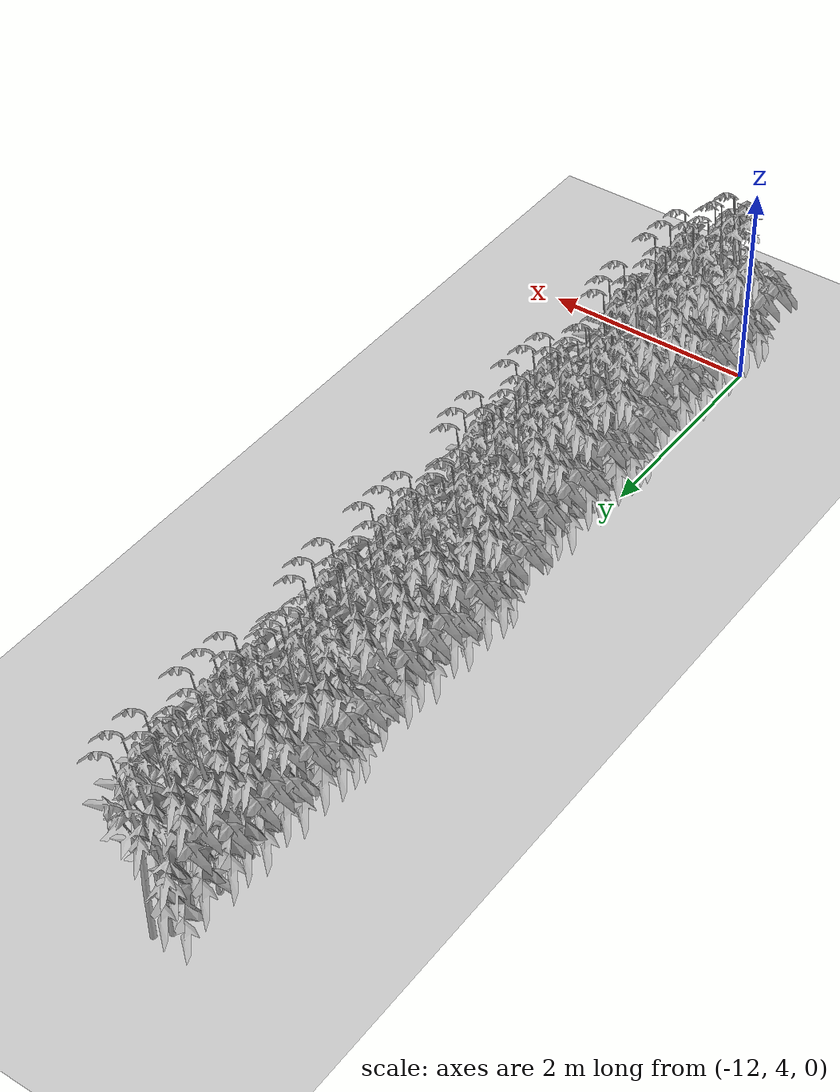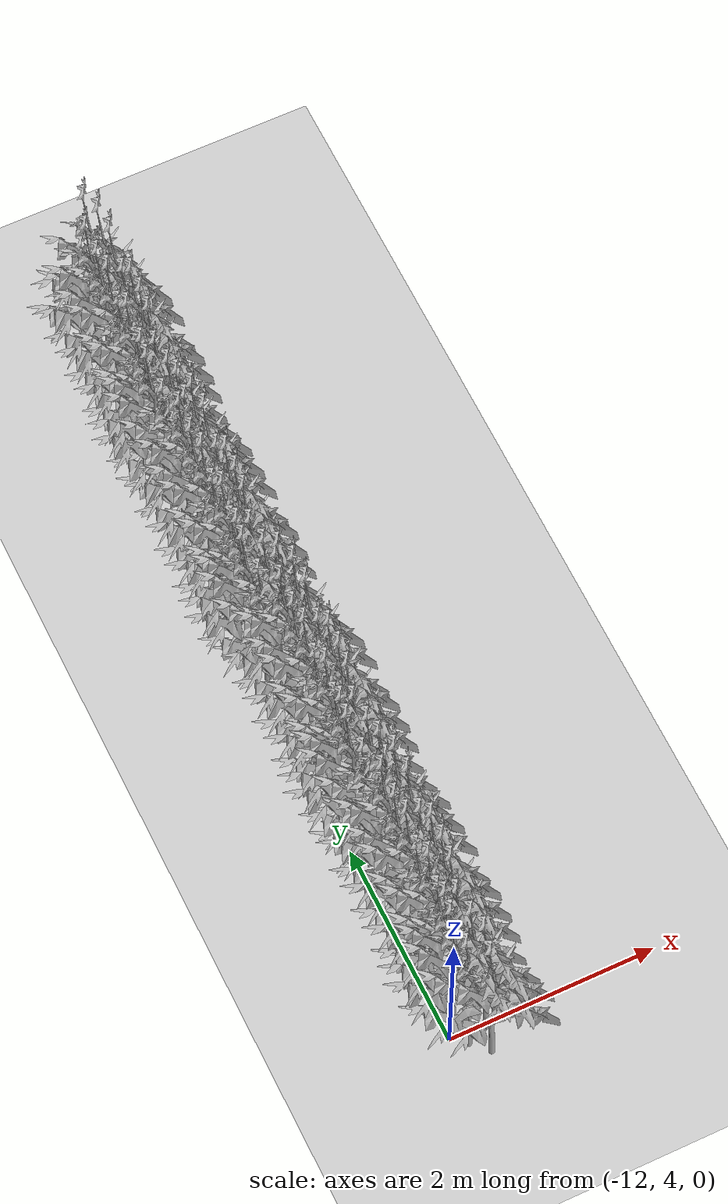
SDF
<sdf version="1.6">
 <world name="default">
  <model name="ground_plane">
   <static>1</static>
   <link name="link">
    <collision name="collision">
     <geometry><plane><normal>0 0 1</normal><size>100 100</size></plane></geometry>
     <surface>
      <contact><collide_bitmask>65535</collide_bitmask></contact>
      <friction><ode><mu>100</mu><mu2>50</mu2></ode></friction>
     </surface>
    </collision>
    <visual name="visual">
     <cast_shadows>0</cast_shadows>
     <geometry><plane><normal>0 0 1</normal><size>100 100</size></plane></geometry>
     <material>
      <script><uri>file://media/materials/scripts/gazebo.material</uri><name>Gazebo/Grey</name></script>
     </material>
    </visual>
   </link>
  </model>
  <model name="MIddle_Plant_3_12">
   <model name="MIddle_Plant_1">
    <model name="tomato_plant_big">
     <static>1</static>
     <link name="link">
      <collision name="collision">
       <pose>0 0 0 1.5708 -0 0</pose>
       <geometry><mesh><scale>0.5 0.6 0.5</scale><uri>model://stick/meshes/stick.dae</uri></mesh></geometry>
      </collision>
      <visual name="visual">
       <geometry>
        <mesh><scale>5e-06 5e-06 7e-06</scale><uri>model://tomato_plant_big/meshes/tomato-plant.dae</uri></mesh>
       </geometry>
      </visual>
     </link>
     <pose>-0.144318 -0.693607 -0 0 -0 0</pose>
    </model>
    <model name="tomato_plant_big_0">
     <static>1</static>
     <link name="link">
      <collision name="collision">
       <pose>0 0 0 1.5708 -0 0</pose>
       <geometry><mesh><scale>0.5 0.6 0.5</scale><uri>model://stick/meshes/stick.dae</uri></mesh></geometry>
      </collision>
      <visual name="visual">
       <geometry>
        <mesh><scale>5e-06 5e-06 7e-06</scale><uri>model://tomato_plant_big/meshes/tomato-plant.dae</uri></mesh>
       </geometry>
      </visual>
     </link>
     <pose>-0.11784 -0.519827 0 0 -0 0</pose>
    </model>
    <model name="tomato_plant_big_1">
     <static>1</static>
     <link name="link">
      <collision name="collision">
       <pose>0 0 0 1.5708 -0 0</pose>
       <geometry><mesh><scale>0.5 0.6 0.5</scale><uri>model://stick/meshes/stick.dae</uri></mesh></geometry>
      </collision>
      <visual name="visual">
       <geometry>
        <mesh><scale>5e-06 5e-06 7e-06</scale><uri>model://tomato_plant_big/meshes/tomato-plant.dae</uri></mesh>
       </geometry>
      </visual>
     </link>
     <pose>0.073755 -0.247584 0 0 -0 0</pose>
    </model>
    <model name="tomato_plant_big_10">
     <static>1</static>
     <link name="link">
      <collision name="collision">
       <pose>0 0 0 1.5708 -0 0</pose>
       <geometry><mesh><scale>0.5 0.6 0.5</scale><uri>model://stick/meshes/stick.dae</uri></mesh></geometry>
      </collision>
      <visual name="visual">
       <geometry>
        <mesh><scale>5e-06 5e-06 7e-06</scale><uri>model://tomato_plant_big/meshes/tomato-plant.dae</uri></mesh>
       </geometry>
      </visual>
     </link>
     <pose>0.037052 1.07094 0 0 -0 0</pose>
    </model>
    <model name="tomato_plant_big_2">
     <static>1</static>
     <link name="link">
      <collision name="collision">
       <pose>0 0 0 1.5708 -0 0</pose>
       <geometry><mesh><scale>0.5 0.6 0.5</scale><uri>model://stick/meshes/stick.dae</uri></mesh></geometry>
      </collision>
      <visual name="visual">
       <geometry>
        <mesh><scale>5e-06 5e-06 7e-06</scale><uri>model://tomato_plant_big/meshes/tomato-plant.dae</uri></mesh>
       </geometry>
      </visual>
     </link>
     <pose>-0.076926 -0.131165 0 0 -0 0</pose>
    </model>
    <model name="tomato_plant_big_3">
     <static>1</static>
     <link name="link">
      <collision name="collision">
       <pose>0 0 0 1.5708 -0 0</pose>
       <geometry><mesh><scale>0.5 0.6 0.5</scale><uri>model://stick/meshes/stick.dae</uri></mesh></geometry>
      </collision>
      <visual name="visual">
       <geometry>
        <mesh><scale>5e-06 5e-06 7e-06</scale><uri>model://tomato_plant_big/meshes/tomato-plant.dae</uri></mesh>
       </geometry>
      </visual>
     </link>
     <pose>0.093714 -0.038386 0 0 -0 0</pose>
    </model>
    <model name="tomato_plant_big_4">
     <static>1</static>
     <link name="link">
      <collision name="collision">
       <pose>0 0 0 1.5708 -0 0</pose>
       <geometry><mesh><scale>0.5 0.6 0.5</scale><uri>model://stick/meshes/stick.dae</uri></mesh></geometry>
      </collision>
      <visual name="visual">
       <geometry>
        <mesh><scale>5e-06 5e-06 7e-06</scale><uri>model://tomato_plant_big/meshes/tomato-plant.dae</uri></mesh>
       </geometry>
      </visual>
     </link>
     <pose>0.103117 0.184356 0 0 -0 0</pose>
    </model>
    <model name="tomato_plant_big_5">
     <static>1</static>
     <link name="link">
      <collision name="collision">
       <pose>0 0 0 1.5708 -0 0</pose>
       <geometry><mesh><scale>0.5 0.6 0.5</scale><uri>model://stick/meshes/stick.dae</uri></mesh></geometry>
      </collision>
      <visual name="visual">
       <geometry>
        <mesh><scale>5e-06 5e-06 7e-06</scale><uri>model://tomato_plant_big/meshes/tomato-plant.dae</uri></mesh>
       </geometry>
      </visual>
     </link>
     <pose>-0.074883 0.301479 0 0 -0 0</pose>
    </model>
    <model name="tomato_plant_big_6">
     <static>1</static>
     <link name="link">
      <collision name="collision">
       <pose>0 0 0 1.5708 -0 0</pose>
       <geometry><mesh><scale>0.5 0.6 0.5</scale><uri>model://stick/meshes/stick.dae</uri></mesh></geometry>
      </collision>
      <visual name="visual">
       <geometry>
        <mesh><scale>5e-06 5e-06 7e-06</scale><uri>model://tomato_plant_big/meshes/tomato-plant.dae</uri></mesh>
       </geometry>
      </visual>
     </link>
     <pose>-0.096921 0.484007 0 0 -0 0</pose>
    </model>
    <model name="tomato_plant_big_7">
     <static>1</static>
     <link name="link">
      <collision name="collision">
       <pose>0 0 0 1.5708 -0 0</pose>
       <geometry><mesh><scale>0.5 0.6 0.5</scale><uri>model://stick/meshes/stick.dae</uri></mesh></geometry>
      </collision>
      <visual name="visual">
       <geometry>
        <mesh><scale>5e-06 5e-06 7e-06</scale><uri>model://tomato_plant_big/meshes/tomato-plant.dae</uri></mesh>
       </geometry>
      </visual>
     </link>
     <pose>0.107491 0.653976 0 0 -0 0</pose>
    </model>
    <model name="tomato_plant_big_8">
     <static>1</static>
     <link name="link">
      <collision name="collision">
       <pose>0 0 0 1.5708 -0 0</pose>
       <geometry><mesh><scale>0.5 0.6 0.5</scale><uri>model://stick/meshes/stick.dae</uri></mesh></geometry>
      </collision>
      <visual name="visual">
       <geometry>
        <mesh><scale>5e-06 5e-06 7e-06</scale><uri>model://tomato_plant_big/meshes/tomato-plant.dae</uri></mesh>
       </geometry>
      </visual>
     </link>
     <pose>-0.07985 0.768549 0 0 -0 0</pose>
    </model>
    <model name="tomato_plant_big_9">
     <static>1</static>
     <link name="link">
      <collision name="collision">
       <pose>0 0 0 1.5708 -0 0</pose>
       <geometry><mesh><scale>0.5 0.6 0.5</scale><uri>model://stick/meshes/stick.dae</uri></mesh></geometry>
      </collision>
      <visual name="visual">
       <geometry>
        <mesh><scale>5e-06 5e-06 7e-06</scale><uri>model://tomato_plant_big/meshes/tomato-plant.dae</uri></mesh>
       </geometry>
      </visual>
     </link>
     <pose>0.098361 0.890852 0 0 -0 0</pose>
    </model>
    <model name="tomato_plant_medium">
     <static>1</static>
     <link name="link">
      <collision name="collision">
       <pose>0 0 0 1.5708 -0 0</pose>
       <geometry><mesh><scale>0.5 0.5 0.5</scale><uri>model://stick/meshes/stick.dae</uri></mesh></geometry>
      </collision>
      <visual name="visual">
       <geometry>
        <mesh><scale>5e-06 5e-06 6e-06</scale><uri>model://tomato_plant_medium/meshes/tomato-plant.dae</uri></mesh>
       </geometry>
      </visual>
     </link>
     <pose>0.056913 -1.05328 0 0 -0 0</pose>
    </model>
    <model name="tomato_plant_medium_0">
     <static>1</static>
     <link name="link">
      <collision name="collision">
       <pose>0 0 0 1.5708 -0 0</pose>
       <geometry><mesh><scale>0.5 0.5 0.5</scale><uri>model://stick/meshes/stick.dae</uri></mesh></geometry>
      </collision>
      <visual name="visual">
       <geometry>
        <mesh><scale>5e-06 5e-06 6e-06</scale><uri>model://tomato_plant_medium/meshes/tomato-plant.dae</uri></mesh>
       </geometry>
      </visual>
     </link>
     <pose>-0.092719 -0.905729 0 0 -0 0</pose>
    </model>
    <model name="tomato_plant_medium_1">
     <static>1</static>
     <link name="link">
      <collision name="collision">
       <pose>0 0 0 1.5708 -0 0</pose>
       <geometry><mesh><scale>0.5 0.5 0.5</scale><uri>model://stick/meshes/stick.dae</uri></mesh></geometry>
      </collision>
      <visual name="visual">
       <geometry>
        <mesh><scale>5e-06 5e-06 6e-06</scale><uri>model://tomato_plant_medium/meshes/tomato-plant.dae</uri></mesh>
       </geometry>
      </visual>
     </link>
     <pose>0.108962 -0.829637 0 0 -0 0</pose>
    </model>
    <model name="tomato_plant_medium_2">
     <static>1</static>
     <link name="link">
      <collision name="collision">
       <pose>0 0 0 1.5708 -0 0</pose>
       <geometry><mesh><scale>0.5 0.5 0.5</scale><uri>model://stick/meshes/stick.dae</uri></mesh></geometry>
      </collision>
      <visual name="visual">
       <geometry>
        <mesh><scale>5e-06 5e-06 6e-06</scale><uri>model://tomato_plant_medium/meshes/tomato-plant.dae</uri></mesh>
       </geometry>
      </visual>
     </link>
     <pose>0.071216 -0.652507 0 0 -0 0</pose>
    </model>
    <model name="tomato_plant_medium_3">
     <static>1</static>
     <link name="link">
      <collision name="collision">
       <pose>0 0 0 1.5708 -0 0</pose>
       <geometry><mesh><scale>0.5 0.5 0.5</scale><uri>model://stick/meshes/stick.dae</uri></mesh></geometry>
      </collision>
      <visual name="visual">
       <geometry>
        <mesh><scale>5e-06 5e-06 6e-06</scale><uri>model://tomato_plant_medium/meshes/tomato-plant.dae</uri></mesh>
       </geometry>
      </visual>
     </link>
     <pose>0.047335 -0.423046 0 0 -0 0</pose>
    </model>
    <model name="tomato_plant_medium_4">
     <static>1</static>
     <link name="link">
      <collision name="collision">
       <pose>0 0 0 1.5708 -0 0</pose>
       <geometry><mesh><scale>0.5 0.5 0.5</scale><uri>model://stick/meshes/stick.dae</uri></mesh></geometry>
      </collision>
      <visual name="visual">
       <geometry>
        <mesh><scale>5e-06 5e-06 6e-06</scale><uri>model://tomato_plant_medium/meshes/tomato-plant.dae</uri></mesh>
       </geometry>
      </visual>
     </link>
     <pose>-0.081012 -0.320324 0 0 -0 0</pose>
    </model>
    <model name="tomato_plant_medium_5">
     <static>1</static>
     <link name="link">
      <collision name="collision">
       <pose>0 0 0 1.5708 -0 0</pose>
       <geometry><mesh><scale>0.5 0.5 0.5</scale><uri>model://stick/meshes/stick.dae</uri></mesh></geometry>
      </collision>
      <visual name="visual">
       <geometry>
        <mesh><scale>5e-06 5e-06 6e-06</scale><uri>model://tomato_plant_medium/meshes/tomato-plant.dae</uri></mesh>
       </geometry>
      </visual>
     </link>
     <pose>-0.07452 0.095988 0 0 -0 0</pose>
    </model>
    <model name="tomato_plant_medium_6">
     <static>1</static>
     <link name="link">
      <collision name="collision">
       <pose>0 0 0 1.5708 -0 0</pose>
       <geometry><mesh><scale>0.5 0.5 0.5</scale><uri>model://stick/meshes/stick.dae</uri></mesh></geometry>
      </collision>
      <visual name="visual">
       <geometry>
        <mesh><scale>5e-06 5e-06 6e-06</scale><uri>model://tomato_plant_medium/meshes/tomato-plant.dae</uri></mesh>
       </geometry>
      </visual>
     </link>
     <pose>0.101424 0.395443 0 0 -0 0</pose>
    </model>
    <model name="tomato_plant_small">
     <static>1</static>
     <link name="link">
      <collision name="collision">
       <pose>0 0 0 1.5708 -0 0</pose>
       <geometry><mesh><scale>0.5 0.45 0.5</scale><uri>model://stick/meshes/stick.dae</uri></mesh></geometry>
      </collision>
      <visual name="visual">
       <geometry>
        <mesh><scale>5e-06 5e-06 5e-06</scale><uri>model://tomato_plant_small/meshes/tomato-plant.dae</uri></mesh>
       </geometry>
      </visual>
     </link>
     <pose>-0.060351 0.969512 0 0 -0 0</pose>
    </model>
    <static>0</static>
    <pose>0.040757 1.77284 0 0 -0 0</pose>
   </model>
   <model name="MIddle_Plant_2">
    <model name="MIddle_Plant_1">
     <model name="tomato_plant_big">
      <static>1</static>
      <link name="link">
       <collision name="collision">
        <pose>0 0 0 1.5708 -0 0</pose>
        <geometry><mesh><scale>0.5 0.6 0.5</scale><uri>model://stick/meshes/stick.dae</uri></mesh></geometry>
       </collision>
       <visual name="visual">
        <geometry>
         <mesh><scale>5e-06 5e-06 7e-06</scale><uri>model://tomato_plant_big/meshes/tomato-plant.dae</uri></mesh>
        </geometry>
       </visual>
      </link>
      <pose>-0.144318 -0.693607 -0 0 -0 0</pose>
     </model>
     <model name="tomato_plant_big_0">
      <static>1</static>
      <link name="link">
       <collision name="collision">
        <pose>0 0 0 1.5708 -0 0</pose>
        <geometry><mesh><scale>0.5 0.6 0.5</scale><uri>model://stick/meshes/stick.dae</uri></mesh></geometry>
       </collision>
       <visual name="visual">
        <geometry>
         <mesh><scale>5e-06 5e-06 7e-06</scale><uri>model://tomato_plant_big/meshes/tomato-plant.dae</uri></mesh>
        </geometry>
       </visual>
      </link>
      <pose>-0.11784 -0.519827 0 0 -0 0</pose>
     </model>
     <model name="tomato_plant_big_1">
      <static>1</static>
      <link name="link">
       <collision name="collision">
        <pose>0 0 0 1.5708 -0 0</pose>
        <geometry><mesh><scale>0.5 0.6 0.5</scale><uri>model://stick/meshes/stick.dae</uri></mesh></geometry>
       </collision>
       <visual name="visual">
        <geometry>
         <mesh><scale>5e-06 5e-06 7e-06</scale><uri>model://tomato_plant_big/meshes/tomato-plant.dae</uri></mesh>
        </geometry>
       </visual>
      </link>
      <pose>0.073755 -0.247584 0 0 -0 0</pose>
     </model>
     <model name="tomato_plant_big_10">
      <static>1</static>
      <link name="link">
       <collision name="collision">
        <pose>0 0 0 1.5708 -0 0</pose>
        <geometry><mesh><scale>0.5 0.6 0.5</scale><uri>model://stick/meshes/stick.dae</uri></mesh></geometry>
       </collision>
       <visual name="visual">
        <geometry>
         <mesh><scale>5e-06 5e-06 7e-06</scale><uri>model://tomato_plant_big/meshes/tomato-plant.dae</uri></mesh>
        </geometry>
       </visual>
      </link>
      <pose>0.037052 1.07094 0 0 -0 0</pose>
     </model>
     <model name="tomato_plant_big_2">
      <static>1</static>
      <link name="link">
       <collision name="collision">
        <pose>0 0 0 1.5708 -0 0</pose>
        <geometry><mesh><scale>0.5 0.6 0.5</scale><uri>model://stick/meshes/stick.dae</uri></mesh></geometry>
       </collision>
       <visual name="visual">
        <geometry>
         <mesh><scale>5e-06 5e-06 7e-06</scale><uri>model://tomato_plant_big/meshes/tomato-plant.dae</uri></mesh>
        </geometry>
       </visual>
      </link>
      <pose>-0.076926 -0.131165 0 0 -0 0</pose>
     </model>
     <model name="tomato_plant_big_3">
      <static>1</static>
      <link name="link">
       <collision name="collision">
        <pose>0 0 0 1.5708 -0 0</pose>
        <geometry><mesh><scale>0.5 0.6 0.5</scale><uri>model://stick/meshes/stick.dae</uri></mesh></geometry>
       </collision>
       <visual name="visual">
        <geometry>
         <mesh><scale>5e-06 5e-06 7e-06</scale><uri>model://tomato_plant_big/meshes/tomato-plant.dae</uri></mesh>
        </geometry>
       </visual>
      </link>
      <pose>0.093714 -0.038386 0 0 -0 0</pose>
     </model>
     <model name="tomato_plant_big_4">
      <static>1</static>
      <link name="link">
       <collision name="collision">
        <pose>0 0 0 1.5708 -0 0</pose>
        <geometry><mesh><scale>0.5 0.6 0.5</scale><uri>model://stick/meshes/stick.dae</uri></mesh></geometry>
       </collision>
       <visual name="visual">
        <geometry>
         <mesh><scale>5e-06 5e-06 7e-06</scale><uri>model://tomato_plant_big/meshes/tomato-plant.dae</uri></mesh>
        </geometry>
       </visual>
      </link>
      <pose>0.103117 0.184356 0 0 -0 0</pose>
     </model>
     <model name="tomato_plant_big_5">
      <static>1</static>
      <link name="link">
       <collision name="collision">
        <pose>0 0 0 1.5708 -0 0</pose>
        <geometry><mesh><scale>0.5 0.6 0.5</scale><uri>model://stick/meshes/stick.dae</uri></mesh></geometry>
       </collision>
       <visual name="visual">
        <geometry>
         <mesh><scale>5e-06 5e-06 7e-06</scale><uri>model://tomato_plant_big/meshes/tomato-plant.dae</uri></mesh>
        </geometry>
       </visual>
      </link>
      <pose>-0.074883 0.301479 0 0 -0 0</pose>
     </model>
     <model name="tomato_plant_big_6">
      <static>1</static>
      <link name="link">
       <collision name="collision">
        <pose>0 0 0 1.5708 -0 0</pose>
        <geometry><mesh><scale>0.5 0.6 0.5</scale><uri>model://stick/meshes/stick.dae</uri></mesh></geometry>
       </collision>
       <visual name="visual">
        <geometry>
         <mesh><scale>5e-06 5e-06 7e-06</scale><uri>model://tomato_plant_big/meshes/tomato-plant.dae</uri></mesh>
        </geometry>
       </visual>
      </link>
      <pose>-0.096921 0.484007 0 0 -0 0</pose>
     </model>
     <model name="tomato_plant_big_7">
      <static>1</static>
      <link name="link">
       <collision name="collision">
        <pose>0 0 0 1.5708 -0 0</pose>
        <geometry><mesh><scale>0.5 0.6 0.5</scale><uri>model://stick/meshes/stick.dae</uri></mesh></geometry>
       </collision>
       <visual name="visual">
        <geometry>
         <mesh><scale>5e-06 5e-06 7e-06</scale><uri>model://tomato_plant_big/meshes/tomato-plant.dae</uri></mesh>
        </geometry>
       </visual>
      </link>
      <pose>0.107491 0.653976 0 0 -0 0</pose>
     </model>
     <model name="tomato_plant_big_8">
      <static>1</static>
      <link name="link">
       <collision name="collision">
        <pose>0 0 0 1.5708 -0 0</pose>
        <geometry><mesh><scale>0.5 0.6 0.5</scale><uri>model://stick/meshes/stick.dae</uri></mesh></geometry>
       </collision>
       <visual name="visual">
        <geometry>
         <mesh><scale>5e-06 5e-06 7e-06</scale><uri>model://tomato_plant_big/meshes/tomato-plant.dae</uri></mesh>
        </geometry>
       </visual>
      </link>
      <pose>-0.07985 0.768549 0 0 -0 0</pose>
     </model>
     <model name="tomato_plant_big_9">
      <static>1</static>
      <link name="link">
       <collision name="collision">
        <pose>0 0 0 1.5708 -0 0</pose>
        <geometry><mesh><scale>0.5 0.6 0.5</scale><uri>model://stick/meshes/stick.dae</uri></mesh></geometry>
       </collision>
       <visual name="visual">
        <geometry>
         <mesh><scale>5e-06 5e-06 7e-06</scale><uri>model://tomato_plant_big/meshes/tomato-plant.dae</uri></mesh>
        </geometry>
       </visual>
      </link>
      <pose>0.098361 0.890852 0 0 -0 0</pose>
     </model>
     <model name="tomato_plant_medium">
      <static>1</static>
      <link name="link">
       <collision name="collision">
        <pose>0 0 0 1.5708 -0 0</pose>
        <geometry><mesh><scale>0.5 0.5 0.5</scale><uri>model://stick/meshes/stick.dae</uri></mesh></geometry>
       </collision>
       <visual name="visual">
        <geometry>
         <mesh><scale>5e-06 5e-06 6e-06</scale><uri>model://tomato_plant_medium/meshes/tomato-plant.dae</uri></mesh>
        </geometry>
       </visual>
      </link>
      <pose>0.056913 -1.05328 0 0 -0 0</pose>
     </model>
     <model name="tomato_plant_medium_0">
      <static>1</static>
      <link name="link">
       <collision name="collision">
        <pose>0 0 0 1.5708 -0 0</pose>
        <geometry><mesh><scale>0.5 0.5 0.5</scale><uri>model://stick/meshes/stick.dae</uri></mesh></geometry>
       </collision>
       <visual name="visual">
        <geometry>
         <mesh><scale>5e-06 5e-06 6e-06</scale><uri>model://tomato_plant_medium/meshes/tomato-plant.dae</uri></mesh>
        </geometry>
       </visual>
      </link>
      <pose>-0.092719 -0.905729 0 0 -0 0</pose>
     </model>
     <model name="tomato_plant_medium_1">
      <static>1</static>
      <link name="link">
       <collision name="collision">
        <pose>0 0 0 1.5708 -0 0</pose>
        <geometry><mesh><scale>0.5 0.5 0.5</scale><uri>model://stick/meshes/stick.dae</uri></mesh></geometry>
       </collision>
       <visual name="visual">
        <geometry>
         <mesh><scale>5e-06 5e-06 6e-06</scale><uri>model://tomato_plant_medium/meshes/tomato-plant.dae</uri></mesh>
        </geometry>
       </visual>
      </link>
      <pose>0.108962 -0.829637 0 0 -0 0</pose>
     </model>
     <model name="tomato_plant_medium_2">
      <static>1</static>
      <link name="link">
       <collision name="collision">
        <pose>0 0 0 1.5708 -0 0</pose>
        <geometry><mesh><scale>0.5 0.5 0.5</scale><uri>model://stick/meshes/stick.dae</uri></mesh></geometry>
       </collision>
       <visual name="visual">
        <geometry>
         <mesh><scale>5e-06 5e-06 6e-06</scale><uri>model://tomato_plant_medium/meshes/tomato-plant.dae</uri></mesh>
        </geometry>
       </visual>
      </link>
      <pose>0.071216 -0.652507 0 0 -0 0</pose>
     </model>
     <model name="tomato_plant_medium_3">
      <static>1</static>
      <link name="link">
       <collision name="collision">
        <pose>0 0 0 1.5708 -0 0</pose>
        <geometry><mesh><scale>0.5 0.5 0.5</scale><uri>model://stick/meshes/stick.dae</uri></mesh></geometry>
       </collision>
       <visual name="visual">
        <geometry>
         <mesh><scale>5e-06 5e-06 6e-06</scale><uri>model://tomato_plant_medium/meshes/tomato-plant.dae</uri></mesh>
        </geometry>
       </visual>
      </link>
      <pose>0.047335 -0.423046 0 0 -0 0</pose>
     </model>
     <model name="tomato_plant_medium_4">
      <static>1</static>
      <link name="link">
       <collision name="collision">
        <pose>0 0 0 1.5708 -0 0</pose>
        <geometry><mesh><scale>0.5 0.5 0.5</scale><uri>model://stick/meshes/stick.dae</uri></mesh></geometry>
       </collision>
       <visual name="visual">
        <geometry>
         <mesh><scale>5e-06 5e-06 6e-06</scale><uri>model://tomato_plant_medium/meshes/tomato-plant.dae</uri></mesh>
        </geometry>
       </visual>
      </link>
      <pose>-0.081012 -0.320324 0 0 -0 0</pose>
     </model>
     <model name="tomato_plant_medium_5">
      <static>1</static>
      <link name="link">
       <collision name="collision">
        <pose>0 0 0 1.5708 -0 0</pose>
        <geometry><mesh><scale>0.5 0.5 0.5</scale><uri>model://stick/meshes/stick.dae</uri></mesh></geometry>
       </collision>
       <visual name="visual">
        <geometry>
         <mesh><scale>5e-06 5e-06 6e-06</scale><uri>model://tomato_plant_medium/meshes/tomato-plant.dae</uri></mesh>
        </geometry>
       </visual>
      </link>
      <pose>-0.07452 0.095988 0 0 -0 0</pose>
     </model>
     <model name="tomato_plant_medium_6">
      <static>1</static>
      <link name="link">
       <collision name="collision">
        <pose>0 0 0 1.5708 -0 0</pose>
        <geometry><mesh><scale>0.5 0.5 0.5</scale><uri>model://stick/meshes/stick.dae</uri></mesh></geometry>
       </collision>
       <visual name="visual">
        <geometry>
         <mesh><scale>5e-06 5e-06 6e-06</scale><uri>model://tomato_plant_medium/meshes/tomato-plant.dae</uri></mesh>
        </geometry>
       </visual>
      </link>
      <pose>0.101424 0.395443 0 0 -0 0</pose>
     </model>
     <model name="tomato_plant_small">
      <static>1</static>
      <link name="link">
       <collision name="collision">
        <pose>0 0 0 1.5708 -0 0</pose>
        <geometry><mesh><scale>0.5 0.45 0.5</scale><uri>model://stick/meshes/stick.dae</uri></mesh></geometry>
       </collision>
       <visual name="visual">
        <geometry>
         <mesh><scale>5e-06 5e-06 5e-06</scale><uri>model://tomato_plant_small/meshes/tomato-plant.dae</uri></mesh>
        </geometry>
       </visual>
      </link>
      <pose>-0.060351 0.969512 0 0 -0 0</pose>
     </model>
     <static>0</static>
     <pose>0.763113 0.028917 0 0 -0 0</pose>
    </model>
    <model name="tomato_plant_big">
     <static>1</static>
     <link name="link">
      <collision name="collision">
       <pose>0 0 0 1.5708 -0 0</pose>
       <geometry><mesh><scale>0.5 0.6 0.5</scale><uri>model://stick/meshes/stick.dae</uri></mesh></geometry>
      </collision>
      <visual name="visual">
       <geometry>
        <mesh><scale>5e-06 5e-06 7e-06</scale><uri>model://tomato_plant_big/meshes/tomato-plant.dae</uri></mesh>
       </geometry>
      </visual>
     </link>
     <pose>0.613724 -2.69399 -0 0 -0 0</pose>
    </model>
    <model name="tomato_plant_big_0">
     <static>1</static>
     <link name="link">
      <collision name="collision">
       <pose>0 0 0 1.5708 -0 0</pose>
       <geometry><mesh><scale>0.5 0.6 0.5</scale><uri>model://stick/meshes/stick.dae</uri></mesh></geometry>
      </collision>
      <visual name="visual">
       <geometry>
        <mesh><scale>5e-06 5e-06 7e-06</scale><uri>model://tomato_plant_big/meshes/tomato-plant.dae</uri></mesh>
       </geometry>
      </visual>
     </link>
     <pose>0.640202 -2.52021 0 0 -0 0</pose>
    </model>
    <model name="tomato_plant_big_1">
     <static>1</static>
     <link name="link">
      <collision name="collision">
       <pose>0 0 0 1.5708 -0 0</pose>
       <geometry><mesh><scale>0.5 0.6 0.5</scale><uri>model://stick/meshes/stick.dae</uri></mesh></geometry>
      </collision>
      <visual name="visual">
       <geometry>
        <mesh><scale>5e-06 5e-06 7e-06</scale><uri>model://tomato_plant_big/meshes/tomato-plant.dae</uri></mesh>
       </geometry>
      </visual>
     </link>
     <pose>0.831797 -2.24797 0 0 -0 0</pose>
    </model>
    <model name="tomato_plant_big_10">
     <static>1</static>
     <link name="link">
      <collision name="collision">
       <pose>0 0 0 1.5708 -0 0</pose>
       <geometry><mesh><scale>0.5 0.6 0.5</scale><uri>model://stick/meshes/stick.dae</uri></mesh></geometry>
      </collision>
      <visual name="visual">
       <geometry>
        <mesh><scale>5e-06 5e-06 7e-06</scale><uri>model://tomato_plant_big/meshes/tomato-plant.dae</uri></mesh>
       </geometry>
      </visual>
     </link>
     <pose>0.795094 -0.929446 0 0 -0 0</pose>
    </model>
    <model name="tomato_plant_big_2">
     <static>1</static>
     <link name="link">
      <collision name="collision">
       <pose>0 0 0 1.5708 -0 0</pose>
       <geometry><mesh><scale>0.5 0.6 0.5</scale><uri>model://stick/meshes/stick.dae</uri></mesh></geometry>
      </collision>
      <visual name="visual">
       <geometry>
        <mesh><scale>5e-06 5e-06 7e-06</scale><uri>model://tomato_plant_big/meshes/tomato-plant.dae</uri></mesh>
       </geometry>
      </visual>
     </link>
     <pose>0.681116 -2.13155 0 0 -0 0</pose>
    </model>
    <model name="tomato_plant_big_3">
     <static>1</static>
     <link name="link">
      <collision name="collision">
       <pose>0 0 0 1.5708 -0 0</pose>
       <geometry><mesh><scale>0.5 0.6 0.5</scale><uri>model://stick/meshes/stick.dae</uri></mesh></geometry>
      </collision>
      <visual name="visual">
       <geometry>
        <mesh><scale>5e-06 5e-06 7e-06</scale><uri>model://tomato_plant_big/meshes/tomato-plant.dae</uri></mesh>
       </geometry>
      </visual>
     </link>
     <pose>0.851755 -2.03877 0 0 -0 0</pose>
    </model>
    <model name="tomato_plant_big_4">
     <static>1</static>
     <link name="link">
      <collision name="collision">
       <pose>0 0 0 1.5708 -0 0</pose>
       <geometry><mesh><scale>0.5 0.6 0.5</scale><uri>model://stick/meshes/stick.dae</uri></mesh></geometry>
      </collision>
      <visual name="visual">
       <geometry>
        <mesh><scale>5e-06 5e-06 7e-06</scale><uri>model://tomato_plant_big/meshes/tomato-plant.dae</uri></mesh>
       </geometry>
      </visual>
     </link>
     <pose>0.861158 -1.81603 0 0 -0 0</pose>
    </model>
    <model name="tomato_plant_big_5">
     <static>1</static>
     <link name="link">
      <collision name="collision">
       <pose>0 0 0 1.5708 -0 0</pose>
       <geometry><mesh><scale>0.5 0.6 0.5</scale><uri>model://stick/meshes/stick.dae</uri></mesh></geometry>
      </collision>
      <visual name="visual">
       <geometry>
        <mesh><scale>5e-06 5e-06 7e-06</scale><uri>model://tomato_plant_big/meshes/tomato-plant.dae</uri></mesh>
       </geometry>
      </visual>
     </link>
     <pose>0.683158 -1.69891 0 0 -0 0</pose>
    </model>
    <model name="tomato_plant_big_6">
     <static>1</static>
     <link name="link">
      <collision name="collision">
       <pose>0 0 0 1.5708 -0 0</pose>
       <geometry><mesh><scale>0.5 0.6 0.5</scale><uri>model://stick/meshes/stick.dae</uri></mesh></geometry>
      </collision>
      <visual name="visual">
       <geometry>
        <mesh><scale>5e-06 5e-06 7e-06</scale><uri>model://tomato_plant_big/meshes/tomato-plant.dae</uri></mesh>
       </geometry>
      </visual>
     </link>
     <pose>0.66112 -1.51638 0 0 -0 0</pose>
    </model>
    <model name="tomato_plant_big_7">
     <static>1</static>
     <link name="link">
      <collision name="collision">
       <pose>0 0 0 1.5708 -0 0</pose>
       <geometry><mesh><scale>0.5 0.6 0.5</scale><uri>model://stick/meshes/stick.dae</uri></mesh></geometry>
      </collision>
      <visual name="visual">
       <geometry>
        <mesh><scale>5e-06 5e-06 7e-06</scale><uri>model://tomato_plant_big/meshes/tomato-plant.dae</uri></mesh>
       </geometry>
      </visual>
     </link>
     <pose>0.865532 -1.34641 0 0 -0 0</pose>
    </model>
    <model name="tomato_plant_big_8">
     <static>1</static>
     <link name="link">
      <collision name="collision">
       <pose>0 0 0 1.5708 -0 0</pose>
       <geometry><mesh><scale>0.5 0.6 0.5</scale><uri>model://stick/meshes/stick.dae</uri></mesh></geometry>
      </collision>
      <visual name="visual">
       <geometry>
        <mesh><scale>5e-06 5e-06 7e-06</scale><uri>model://tomato_plant_big/meshes/tomato-plant.dae</uri></mesh>
       </geometry>
      </visual>
     </link>
     <pose>0.678192 -1.23184 0 0 -0 0</pose>
    </model>
    <model name="tomato_plant_big_9">
     <static>1</static>
     <link name="link">
      <collision name="collision">
       <pose>0 0 0 1.5708 -0 0</pose>
       <geometry><mesh><scale>0.5 0.6 0.5</scale><uri>model://stick/meshes/stick.dae</uri></mesh></geometry>
      </collision>
      <visual name="visual">
       <geometry>
        <mesh><scale>5e-06 5e-06 7e-06</scale><uri>model://tomato_plant_big/meshes/tomato-plant.dae</uri></mesh>
       </geometry>
      </visual>
     </link>
     <pose>0.856402 -1.10953 0 0 -0 0</pose>
    </model>
    <model name="tomato_plant_medium">
     <static>1</static>
     <link name="link">
      <collision name="collision">
       <pose>0 0 0 1.5708 -0 0</pose>
       <geometry><mesh><scale>0.5 0.5 0.5</scale><uri>model://stick/meshes/stick.dae</uri></mesh></geometry>
      </collision>
      <visual name="visual">
       <geometry>
        <mesh><scale>5e-06 5e-06 6e-06</scale><uri>model://tomato_plant_medium/meshes/tomato-plant.dae</uri></mesh>
       </geometry>
      </visual>
     </link>
     <pose>0.814955 -3.05367 0 0 -0 0</pose>
    </model>
    <model name="tomato_plant_medium_0">
     <static>1</static>
     <link name="link">
      <collision name="collision">
       <pose>0 0 0 1.5708 -0 0</pose>
       <geometry><mesh><scale>0.5 0.5 0.5</scale><uri>model://stick/meshes/stick.dae</uri></mesh></geometry>
      </collision>
      <visual name="visual">
       <geometry>
        <mesh><scale>5e-06 5e-06 6e-06</scale><uri>model://tomato_plant_medium/meshes/tomato-plant.dae</uri></mesh>
       </geometry>
      </visual>
     </link>
     <pose>0.665322 -2.90611 0 0 -0 0</pose>
    </model>
    <model name="tomato_plant_medium_1">
     <static>1</static>
     <link name="link">
      <collision name="collision">
       <pose>0 0 0 1.5708 -0 0</pose>
       <geometry><mesh><scale>0.5 0.5 0.5</scale><uri>model://stick/meshes/stick.dae</uri></mesh></geometry>
      </collision>
      <visual name="visual">
       <geometry>
        <mesh><scale>5e-06 5e-06 6e-06</scale><uri>model://tomato_plant_medium/meshes/tomato-plant.dae</uri></mesh>
       </geometry>
      </visual>
     </link>
     <pose>0.867004 -2.83002 0 0 -0 0</pose>
    </model>
    <model name="tomato_plant_medium_2">
     <static>1</static>
     <link name="link">
      <collision name="collision">
       <pose>0 0 0 1.5708 -0 0</pose>
       <geometry><mesh><scale>0.5 0.5 0.5</scale><uri>model://stick/meshes/stick.dae</uri></mesh></geometry>
      </collision>
      <visual name="visual">
       <geometry>
        <mesh><scale>5e-06 5e-06 6e-06</scale><uri>model://tomato_plant_medium/meshes/tomato-plant.dae</uri></mesh>
       </geometry>
      </visual>
     </link>
     <pose>0.829257 -2.65289 0 0 -0 0</pose>
    </model>
    <model name="tomato_plant_medium_3">
     <static>1</static>
     <link name="link">
      <collision name="collision">
       <pose>0 0 0 1.5708 -0 0</pose>
       <geometry><mesh><scale>0.5 0.5 0.5</scale><uri>model://stick/meshes/stick.dae</uri></mesh></geometry>
      </collision>
      <visual name="visual">
       <geometry>
        <mesh><scale>5e-06 5e-06 6e-06</scale><uri>model://tomato_plant_medium/meshes/tomato-plant.dae</uri></mesh>
       </geometry>
      </visual>
     </link>
     <pose>0.805376 -2.42343 0 0 -0 0</pose>
    </model>
    <model name="tomato_plant_medium_4">
     <static>1</static>
     <link name="link">
      <collision name="collision">
       <pose>0 0 0 1.5708 -0 0</pose>
       <geometry><mesh><scale>0.5 0.5 0.5</scale><uri>model://stick/meshes/stick.dae</uri></mesh></geometry>
      </collision>
      <visual name="visual">
       <geometry>
        <mesh><scale>5e-06 5e-06 6e-06</scale><uri>model://tomato_plant_medium/meshes/tomato-plant.dae</uri></mesh>
       </geometry>
      </visual>
     </link>
     <pose>0.67703 -2.32071 0 0 -0 0</pose>
    </model>
    <model name="tomato_plant_medium_5">
     <static>1</static>
     <link name="link">
      <collision name="collision">
       <pose>0 0 0 1.5708 -0 0</pose>
       <geometry><mesh><scale>0.5 0.5 0.5</scale><uri>model://stick/meshes/stick.dae</uri></mesh></geometry>
      </collision>
      <visual name="visual">
       <geometry>
        <mesh><scale>5e-06 5e-06 6e-06</scale><uri>model://tomato_plant_medium/meshes/tomato-plant.dae</uri></mesh>
       </geometry>
      </visual>
     </link>
     <pose>0.683522 -1.9044 0 0 -0 0</pose>
    </model>
    <model name="tomato_plant_medium_6">
     <static>1</static>
     <link name="link">
      <collision name="collision">
       <pose>0 0 0 1.5708 -0 0</pose>
       <geometry><mesh><scale>0.5 0.5 0.5</scale><uri>model://stick/meshes/stick.dae</uri></mesh></geometry>
      </collision>
      <visual name="visual">
       <geometry>
        <mesh><scale>5e-06 5e-06 6e-06</scale><uri>model://tomato_plant_medium/meshes/tomato-plant.dae</uri></mesh>
       </geometry>
      </visual>
     </link>
     <pose>0.859466 -1.60494 0 0 -0 0</pose>
    </model>
    <model name="tomato_plant_small">
     <static>1</static>
     <link name="link">
      <collision name="collision">
       <pose>0 0 0 1.5708 -0 0</pose>
       <geometry><mesh><scale>0.5 0.45 0.5</scale><uri>model://stick/meshes/stick.dae</uri></mesh></geometry>
      </collision>
      <visual name="visual">
       <geometry>
        <mesh><scale>5e-06 5e-06 5e-06</scale><uri>model://tomato_plant_small/meshes/tomato-plant.dae</uri></mesh>
       </geometry>
      </visual>
     </link>
     <pose>0.697691 -1.03087 0 0 -0 0</pose>
    </model>
    <static>0</static>
    <pose>-0.78485 5.73439 0 0 -0 0</pose>
   </model>
   <model name="tomato_plant_big">
    <static>1</static>
    <link name="link">
     <collision name="collision">
      <pose>0 0 0 1.5708 -0 0</pose>
      <geometry><mesh><scale>0.5 0.6 0.5</scale><uri>model://stick/meshes/stick.dae</uri></mesh></geometry>
     </collision>
     <visual name="visual">
      <geometry>
       <mesh><scale>5e-06 5e-06 7e-06</scale><uri>model://tomato_plant_big/meshes/tomato-plant.dae</uri></mesh>
      </geometry>
     </visual>
    </link>
    <pose>-0.108632 -0.950068 -0 0 -0 0</pose>
   </model>
   <model name="tomato_plant_big_0">
    <static>1</static>
    <link name="link">
     <collision name="collision">
      <pose>0 0 0 1.5708 -0 0</pose>
      <geometry><mesh><scale>0.5 0.6 0.5</scale><uri>model://stick/meshes/stick.dae</uri></mesh></geometry>
     </collision>
     <visual name="visual">
      <geometry>
       <mesh><scale>5e-06 5e-06 7e-06</scale><uri>model://tomato_plant_big/meshes/tomato-plant.dae</uri></mesh>
      </geometry>
     </visual>
    </link>
    <pose>-0.082154 -0.776288 0 0 -0 0</pose>
   </model>
   <model name="tomato_plant_big_1">
    <static>1</static>
    <link name="link">
     <collision name="collision">
      <pose>0 0 0 1.5708 -0 0</pose>
      <geometry><mesh><scale>0.5 0.6 0.5</scale><uri>model://stick/meshes/stick.dae</uri></mesh></geometry>
     </collision>
     <visual name="visual">
      <geometry>
       <mesh><scale>5e-06 5e-06 7e-06</scale><uri>model://tomato_plant_big/meshes/tomato-plant.dae</uri></mesh>
      </geometry>
     </visual>
    </link>
    <pose>0.109441 -0.504045 0 0 -0 0</pose>
   </model>
   <model name="tomato_plant_big_10">
    <static>1</static>
    <link name="link">
     <collision name="collision">
      <pose>0 0 0 1.5708 -0 0</pose>
      <geometry><mesh><scale>0.5 0.6 0.5</scale><uri>model://stick/meshes/stick.dae</uri></mesh></geometry>
     </collision>
     <visual name="visual">
      <geometry>
       <mesh><scale>5e-06 5e-06 7e-06</scale><uri>model://tomato_plant_big/meshes/tomato-plant.dae</uri></mesh>
      </geometry>
     </visual>
    </link>
    <pose>0.072738 0.814477 0 0 -0 0</pose>
   </model>
   <model name="tomato_plant_big_2">
    <static>1</static>
    <link name="link">
     <collision name="collision">
      <pose>0 0 0 1.5708 -0 0</pose>
      <geometry><mesh><scale>0.5 0.6 0.5</scale><uri>model://stick/meshes/stick.dae</uri></mesh></geometry>
     </collision>
     <visual name="visual">
      <geometry>
       <mesh><scale>5e-06 5e-06 7e-06</scale><uri>model://tomato_plant_big/meshes/tomato-plant.dae</uri></mesh>
      </geometry>
     </visual>
    </link>
    <pose>-0.04124 -0.387626 0 0 -0 0</pose>
   </model>
   <model name="tomato_plant_big_3">
    <static>1</static>
    <link name="link">
     <collision name="collision">
      <pose>0 0 0 1.5708 -0 0</pose>
      <geometry><mesh><scale>0.5 0.6 0.5</scale><uri>model://stick/meshes/stick.dae</uri></mesh></geometry>
     </collision>
     <visual name="visual">
      <geometry>
       <mesh><scale>5e-06 5e-06 7e-06</scale><uri>model://tomato_plant_big/meshes/tomato-plant.dae</uri></mesh>
      </geometry>
     </visual>
    </link>
    <pose>0.129399 -0.294847 0 0 -0 0</pose>
   </model>
   <model name="tomato_plant_big_4">
    <static>1</static>
    <link name="link">
     <collision name="collision">
      <pose>0 0 0 1.5708 -0 0</pose>
      <geometry><mesh><scale>0.5 0.6 0.5</scale><uri>model://stick/meshes/stick.dae</uri></mesh></geometry>
     </collision>
     <visual name="visual">
      <geometry>
       <mesh><scale>5e-06 5e-06 7e-06</scale><uri>model://tomato_plant_big/meshes/tomato-plant.dae</uri></mesh>
      </geometry>
     </visual>
    </link>
    <pose>0.138802 -0.072105 0 0 -0 0</pose>
   </model>
   <model name="tomato_plant_big_5">
    <static>1</static>
    <link name="link">
     <collision name="collision">
      <pose>0 0 0 1.5708 -0 0</pose>
      <geometry><mesh><scale>0.5 0.6 0.5</scale><uri>model://stick/meshes/stick.dae</uri></mesh></geometry>
     </collision>
     <visual name="visual">
      <geometry>
       <mesh><scale>5e-06 5e-06 7e-06</scale><uri>model://tomato_plant_big/meshes/tomato-plant.dae</uri></mesh>
      </geometry>
     </visual>
    </link>
    <pose>-0.039198 0.045018 0 0 -0 0</pose>
   </model>
   <model name="tomato_plant_big_6">
    <static>1</static>
    <link name="link">
     <collision name="collision">
      <pose>0 0 0 1.5708 -0 0</pose>
      <geometry><mesh><scale>0.5 0.6 0.5</scale><uri>model://stick/meshes/stick.dae</uri></mesh></geometry>
     </collision>
     <visual name="visual">
      <geometry>
       <mesh><scale>5e-06 5e-06 7e-06</scale><uri>model://tomato_plant_big/meshes/tomato-plant.dae</uri></mesh>
      </geometry>
     </visual>
    </link>
    <pose>-0.061236 0.227546 0 0 -0 0</pose>
   </model>
   <model name="tomato_plant_big_7">
    <static>1</static>
    <link name="link">
     <collision name="collision">
      <pose>0 0 0 1.5708 -0 0</pose>
      <geometry><mesh><scale>0.5 0.6 0.5</scale><uri>model://stick/meshes/stick.dae</uri></mesh></geometry>
     </collision>
     <visual name="visual">
      <geometry>
       <mesh><scale>5e-06 5e-06 7e-06</scale><uri>model://tomato_plant_big/meshes/tomato-plant.dae</uri></mesh>
      </geometry>
     </visual>
    </link>
    <pose>0.143176 0.397515 0 0 -0 0</pose>
   </model>
   <model name="tomato_plant_big_8">
    <static>1</static>
    <link name="link">
     <collision name="collision">
      <pose>0 0 0 1.5708 -0 0</pose>
      <geometry><mesh><scale>0.5 0.6 0.5</scale><uri>model://stick/meshes/stick.dae</uri></mesh></geometry>
     </collision>
     <visual name="visual">
      <geometry>
       <mesh><scale>5e-06 5e-06 7e-06</scale><uri>model://tomato_plant_big/meshes/tomato-plant.dae</uri></mesh>
      </geometry>
     </visual>
    </link>
    <pose>-0.044164 0.512088 0 0 -0 0</pose>
   </model>
   <model name="tomato_plant_big_9">
    <static>1</static>
    <link name="link">
     <collision name="collision">
      <pose>0 0 0 1.5708 -0 0</pose>
      <geometry><mesh><scale>0.5 0.6 0.5</scale><uri>model://stick/meshes/stick.dae</uri></mesh></geometry>
     </collision>
     <visual name="visual">
      <geometry>
       <mesh><scale>5e-06 5e-06 7e-06</scale><uri>model://tomato_plant_big/meshes/tomato-plant.dae</uri></mesh>
      </geometry>
     </visual>
    </link>
    <pose>0.134046 0.634391 0 0 -0 0</pose>
   </model>
   <model name="tomato_plant_medium">
    <static>1</static>
    <link name="link">
     <collision name="collision">
      <pose>0 0 0 1.5708 -0 0</pose>
      <geometry><mesh><scale>0.5 0.5 0.5</scale><uri>model://stick/meshes/stick.dae</uri></mesh></geometry>
     </collision>
     <visual name="visual">
      <geometry>
       <mesh><scale>5e-06 5e-06 6e-06</scale><uri>model://tomato_plant_medium/meshes/tomato-plant.dae</uri></mesh>
      </geometry>
     </visual>
    </link>
    <pose>0.092599 -1.30974 0 0 -0 0</pose>
   </model>
   <model name="tomato_plant_medium_0">
    <static>1</static>
    <link name="link">
     <collision name="collision">
      <pose>0 0 0 1.5708 -0 0</pose>
      <geometry><mesh><scale>0.5 0.5 0.5</scale><uri>model://stick/meshes/stick.dae</uri></mesh></geometry>
     </collision>
     <visual name="visual">
      <geometry>
       <mesh><scale>5e-06 5e-06 6e-06</scale><uri>model://tomato_plant_medium/meshes/tomato-plant.dae</uri></mesh>
      </geometry>
     </visual>
    </link>
    <pose>-0.057034 -1.16219 0 0 -0 0</pose>
   </model>
   <model name="tomato_plant_medium_1">
    <static>1</static>
    <link name="link">
     <collision name="collision">
      <pose>0 0 0 1.5708 -0 0</pose>
      <geometry><mesh><scale>0.5 0.5 0.5</scale><uri>model://stick/meshes/stick.dae</uri></mesh></geometry>
     </collision>
     <visual name="visual">
      <geometry>
       <mesh><scale>5e-06 5e-06 6e-06</scale><uri>model://tomato_plant_medium/meshes/tomato-plant.dae</uri></mesh>
      </geometry>
     </visual>
    </link>
    <pose>0.144648 -1.0861 0 0 -0 0</pose>
   </model>
   <model name="tomato_plant_medium_2">
    <static>1</static>
    <link name="link">
     <collision name="collision">
      <pose>0 0 0 1.5708 -0 0</pose>
      <geometry><mesh><scale>0.5 0.5 0.5</scale><uri>model://stick/meshes/stick.dae</uri></mesh></geometry>
     </collision>
     <visual name="visual">
      <geometry>
       <mesh><scale>5e-06 5e-06 6e-06</scale><uri>model://tomato_plant_medium/meshes/tomato-plant.dae</uri></mesh>
      </geometry>
     </visual>
    </link>
    <pose>0.106901 -0.908968 0 0 -0 0</pose>
   </model>
   <model name="tomato_plant_medium_3">
    <static>1</static>
    <link name="link">
     <collision name="collision">
      <pose>0 0 0 1.5708 -0 0</pose>
      <geometry><mesh><scale>0.5 0.5 0.5</scale><uri>model://stick/meshes/stick.dae</uri></mesh></geometry>
     </collision>
     <visual name="visual">
      <geometry>
       <mesh><scale>5e-06 5e-06 6e-06</scale><uri>model://tomato_plant_medium/meshes/tomato-plant.dae</uri></mesh>
      </geometry>
     </visual>
    </link>
    <pose>0.08302 -0.679508 0 0 -0 0</pose>
   </model>
   <model name="tomato_plant_medium_4">
    <static>1</static>
    <link name="link">
     <collision name="collision">
      <pose>0 0 0 1.5708 -0 0</pose>
      <geometry><mesh><scale>0.5 0.5 0.5</scale><uri>model://stick/meshes/stick.dae</uri></mesh></geometry>
     </collision>
     <visual name="visual">
      <geometry>
       <mesh><scale>5e-06 5e-06 6e-06</scale><uri>model://tomato_plant_medium/meshes/tomato-plant.dae</uri></mesh>
      </geometry>
     </visual>
    </link>
    <pose>-0.045326 -0.576785 0 0 -0 0</pose>
   </model>
   <model name="tomato_plant_medium_5">
    <static>1</static>
    <link name="link">
     <collision name="collision">
      <pose>0 0 0 1.5708 -0 0</pose>
      <geometry><mesh><scale>0.5 0.5 0.5</scale><uri>model://stick/meshes/stick.dae</uri></mesh></geometry>
     </collision>
     <visual name="visual">
      <geometry>
       <mesh><scale>5e-06 5e-06 6e-06</scale><uri>model://tomato_plant_medium/meshes/tomato-plant.dae</uri></mesh>
      </geometry>
     </visual>
    </link>
    <pose>-0.038834 -0.160473 0 0 -0 0</pose>
   </model>
   <model name="tomato_plant_medium_6">
    <static>1</static>
    <link name="link">
     <collision name="collision">
      <pose>0 0 0 1.5708 -0 0</pose>
      <geometry><mesh><scale>0.5 0.5 0.5</scale><uri>model://stick/meshes/stick.dae</uri></mesh></geometry>
     </collision>
     <visual name="visual">
      <geometry>
       <mesh><scale>5e-06 5e-06 6e-06</scale><uri>model://tomato_plant_medium/meshes/tomato-plant.dae</uri></mesh>
      </geometry>
     </visual>
    </link>
    <pose>0.13711 0.138982 0 0 -0 0</pose>
   </model>
   <model name="tomato_plant_small">
    <static>1</static>
    <link name="link">
     <collision name="collision">
      <pose>0 0 0 1.5708 -0 0</pose>
      <geometry><mesh><scale>0.5 0.45 0.5</scale><uri>model://stick/meshes/stick.dae</uri></mesh></geometry>
     </collision>
     <visual name="visual">
      <geometry>
       <mesh><scale>5e-06 5e-06 5e-06</scale><uri>model://tomato_plant_small/meshes/tomato-plant.dae</uri></mesh>
      </geometry>
     </visual>
    </link>
    <pose>-0.024665 0.713051 0 0 -0 0</pose>
   </model>
   <static>0</static>
   <pose>-11.7982 5.03685 0 0 -0 0</pose>
  </model>
 </world>
</sdf>
